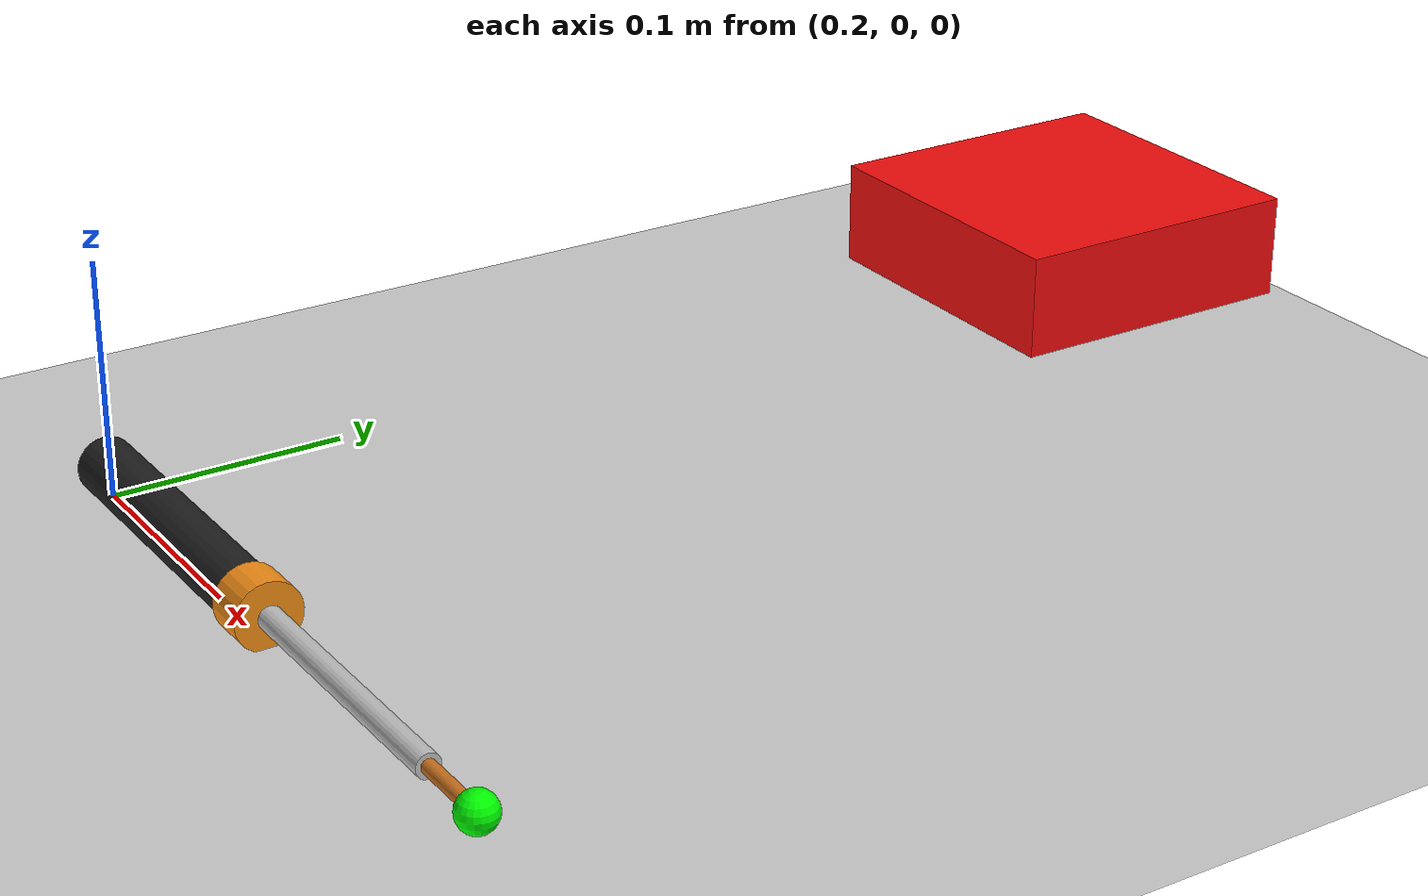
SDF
<?xml version="1.0" ?>
<sdf version="1.6">
  <world name="arm_world">

    <include><uri>model://sun</uri></include>
    <include><uri>model://ground_plane</uri></include>

    <physics type="ode">
      <real_time_update_rate>1000.0</real_time_update_rate>
      <max_step_size>0.001</max_step_size>
      <real_time_factor>1</real_time_factor>
    </physics>

    <gui fullscreen='0'>
      <camera name='user_camera'>
        <pose>0.9 -0.9 0.7 0 0.45 2.3</pose>
        <view_controller>orbit</view_controller>
      </camera>
    </gui>

    <plugin name="gazebo_ros_state" filename="libgazebo_ros_state.so">
      <ros><namespace>/gazebo</namespace></ros>
      <update_rate>10.0</update_rate>
    </plugin>

    <!-- Soldering iron lying flat, tip at world (0.35, 0, 0.012) -->
    <model name="precision_tool">
      <static>true</static>
      <pose>0.35 0.0 0.0 0 0 0</pose>
      <link name="grip">
        <pose>-0.09 0 0.012 0 1.5708 0</pose>
        <visual name="v">
          <geometry><cylinder><radius>0.012</radius><length>0.13</length></cylinder></geometry>
          <material><ambient>0.08 0.08 0.08 1</ambient><diffuse>0.12 0.12 0.12 1</diffuse></material>
        </visual>
        <collision name="c">
          <geometry><cylinder><radius>0.012</radius><length>0.13</length></cylinder></geometry>
        </collision>
        <inertial><mass>0.08</mass></inertial>
      </link>
      <link name="collar">
        <pose>-0.015 0 0.012 0 1.5708 0</pose>
        <visual name="v">
          <geometry><cylinder><radius>0.014</radius><length>0.018</length></cylinder></geometry>
          <material><ambient>0.9 0.5 0.05 1</ambient><diffuse>0.95 0.55 0.08 1</diffuse></material>
        </visual>
        <collision name="c">
          <geometry><cylinder><radius>0.014</radius><length>0.018</length></cylinder></geometry>
        </collision>
        <inertial><mass>0.01</mass></inertial>
      </link>
      <link name="barrel">
        <pose>0.055 0 0.012 0 1.5708 0</pose>
        <visual name="v">
          <geometry><cylinder><radius>0.005</radius><length>0.12</length></cylinder></geometry>
          <material><ambient>0.6 0.6 0.6 1</ambient><diffuse>0.75 0.75 0.75 1</diffuse><specular>0.9 0.9 0.9 1</specular></material>
        </visual>
        <collision name="c">
          <geometry><cylinder><radius>0.005</radius><length>0.12</length></cylinder></geometry>
        </collision>
        <inertial><mass>0.03</mass></inertial>
      </link>
      <link name="copper_tip">
        <pose>0.130 0 0.012 0 1.5708 0</pose>
        <visual name="v">
          <geometry><cylinder><radius>0.003</radius><length>0.03</length></cylinder></geometry>
          <material><ambient>0.7 0.4 0.1 1</ambient><diffuse>0.8 0.45 0.12 1</diffuse></material>
        </visual>
        <collision name="c">
          <geometry><cylinder><radius>0.003</radius><length>0.03</length></cylinder></geometry>
        </collision>
        <inertial><mass>0.005</mass></inertial>
      </link>
      <link name="tip_dot">
        <pose>0.148 0 0.012 0 0 0</pose>
        <visual name="v">
          <geometry><sphere><radius>0.008</radius></sphere></geometry>
          <material>
            <ambient>0.0 1.0 0.0 1</ambient>
            <diffuse>0.0 1.0 0.0 1</diffuse>
            <emissive>0.0 0.7 0.0 1</emissive>
          </material>
        </visual>
        <collision name="c"><geometry><sphere><radius>0.008</radius></sphere></geometry></collision>
        <inertial><mass>0.001</mass></inertial>
      </link>
      <joint name="j1" type="fixed"><parent>grip</parent><child>collar</child></joint>
      <joint name="j2" type="fixed"><parent>collar</parent><child>barrel</child></joint>
      <joint name="j3" type="fixed"><parent>barrel</parent><child>copper_tip</child></joint>
      <joint name="j4" type="fixed"><parent>copper_tip</parent><child>tip_dot</child></joint>
    </model>

    <!-- Blocking plate: 12cm x 12cm x 4cm (smaller so beam can go around it)  -->
    <!-- Starts far away at y=0.35. box_mover will sweep it over tool tip.       -->
    <!-- Bottom of plate at z=0.07, tip at z=0.012 → 5.8cm clear gap above tip  -->
    <model name="blocking_box">
      <static>false</static>
      <pose>0.35 0.35 0.09 0 0 0</pose>
      <link name="plate_link">
        <visual name="v">
          <geometry>
            <box><size>0.12 0.12 0.04</size></box>
          </geometry>
          <material>
            <ambient>0.90 0.05 0.05 1</ambient>
            <diffuse>0.95 0.05 0.05 1</diffuse>
            <specular>0.3 0.0 0.0 1</specular>
          </material>
        </visual>
        <collision name="c">
          <geometry><box><size>0.12 0.12 0.04</size></box></geometry>
        </collision>
        <inertial>
          <mass>0.2</mass>
          <inertia>
            <ixx>0.0004</ixx><ixy>0</ixy><ixz>0</ixz>
            <iyy>0.0004</iyy><iyz>0</iyz><izz>0.0008</izz>
          </inertia>
        </inertial>
      </link>
    </model>

  </world>
</sdf>
